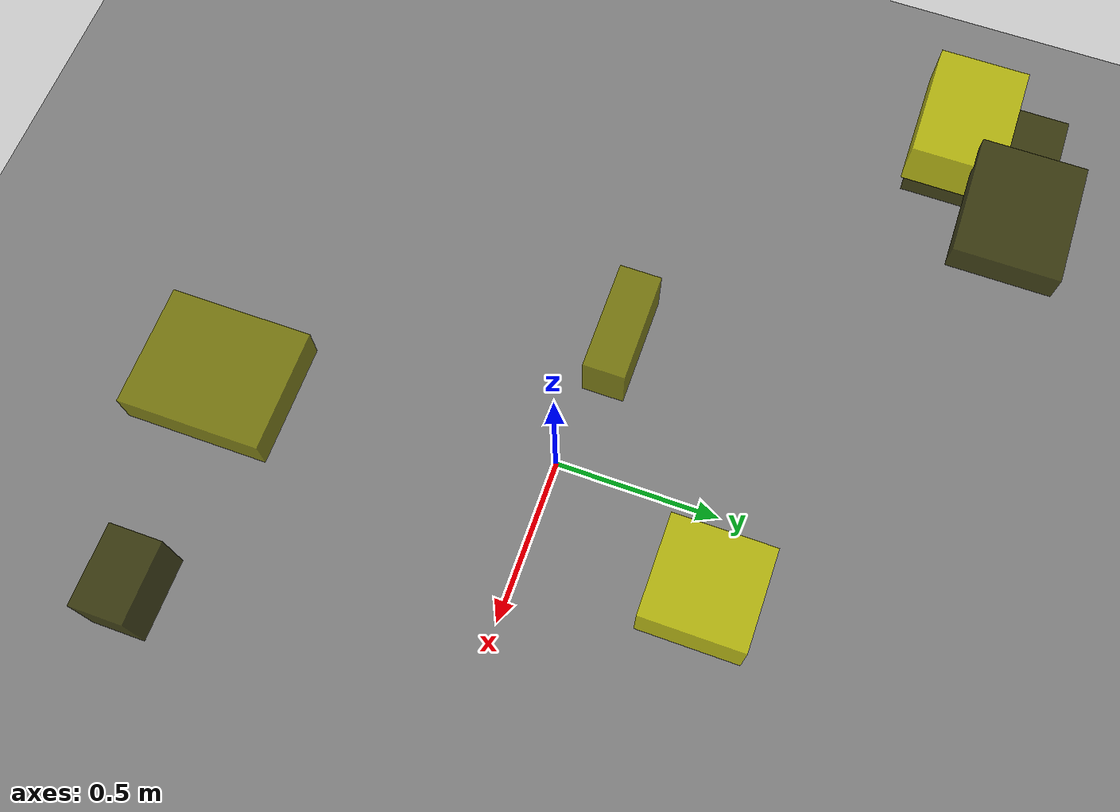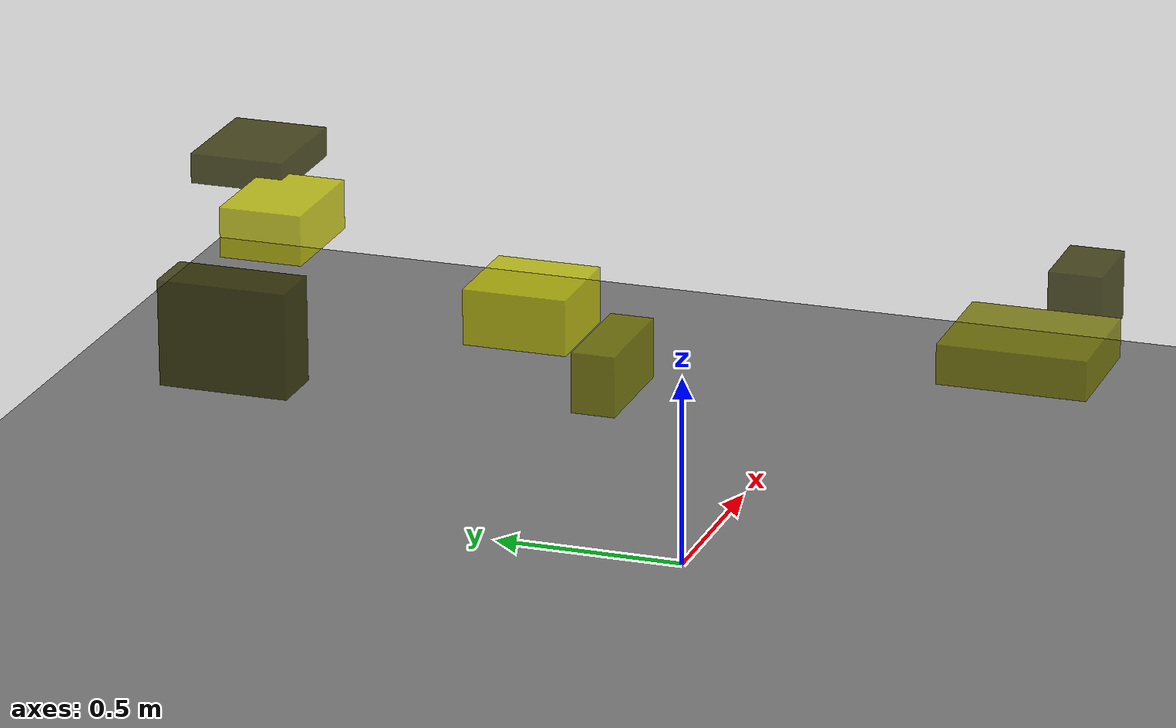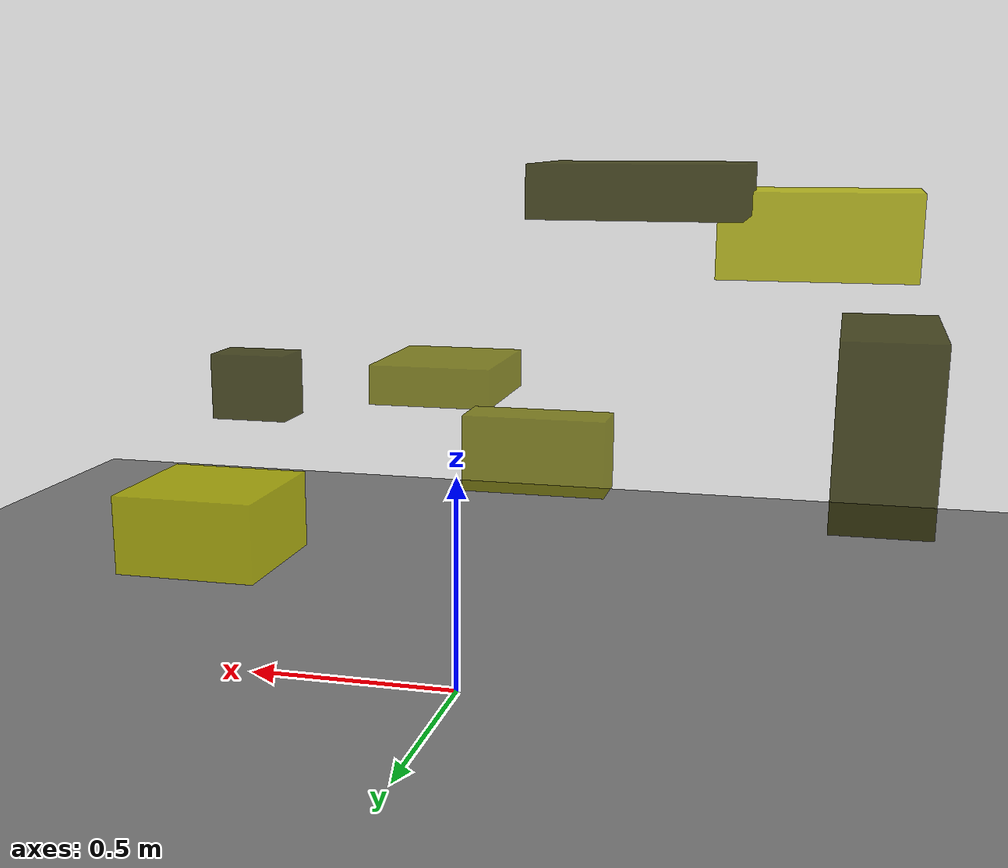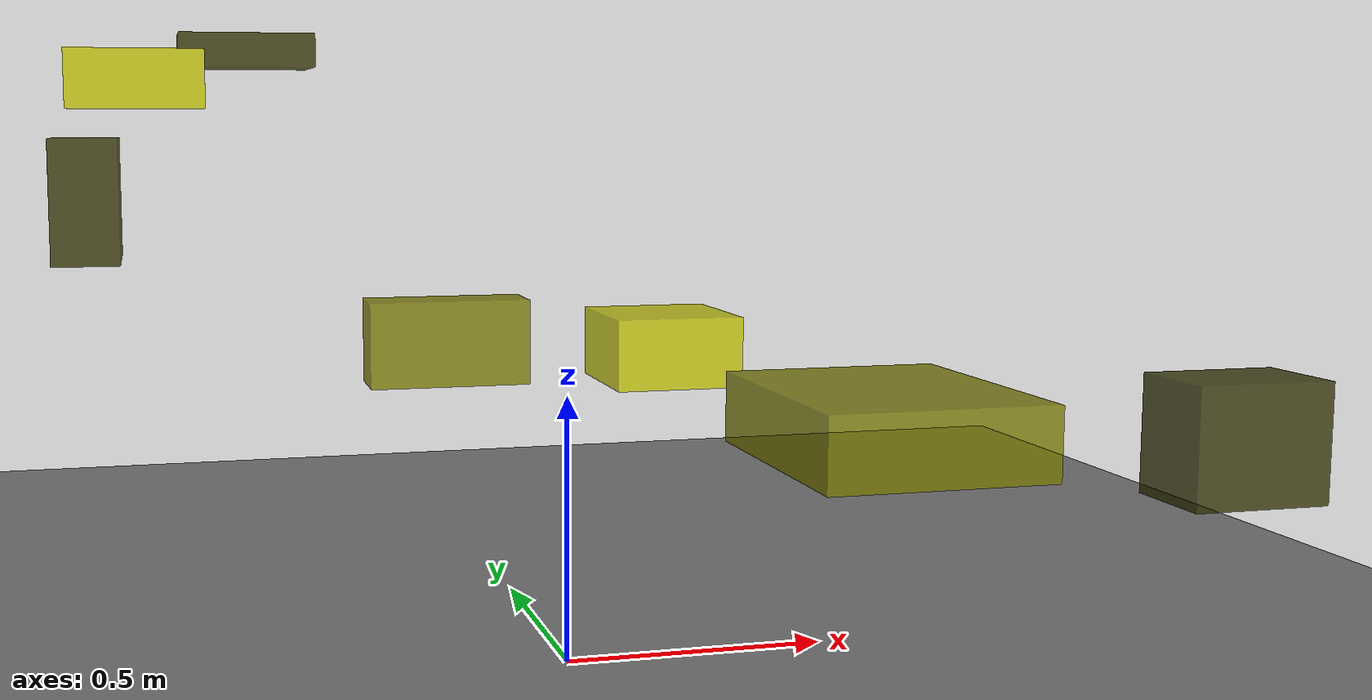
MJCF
<?xml version="1.0"?>
<mujoco model="obstacle_scene">
  <compiler angle="radian" coordinate="local"/>
  <option timestep="0.001" gravity="0 0 -9.81"/>

  <asset>
    <material name="obstacle_mat" rgba="0.8 0.8 0.0 0.8"/>
    <material name="ground_mat" rgba="0.5 0.5 0.5 1"/>
  </asset>

  <worldbody>
    <!-- Ground plane -->
    <geom name="ground" type="plane" size="3 3 0.1" material="ground_mat"/>

    <!-- Obstacles -->
    <body name="obstacle_0" pos="-0.867682 0.843841 0.832026">
      <geom name="obs_0" type="box" size="0.070662 0.162951 0.133170" rgba="0.2 0.2 0.0 0.8"/>
    </body>
    <body name="obstacle_1" pos="-0.204896 0.113873 0.595173">
      <geom name="obs_1" type="box" size="0.147809 0.056064 0.078309" rgba="0.5 0.5 0.0 0.8"/>
    </body>
    <body name="obstacle_2" pos="0.342509 0.520904 0.514266">
      <geom name="obs_2" type="box" size="0.136240 0.138606 0.074637" rgba="0.8 0.8 0.0 0.8"/>
    </body>
    <body name="obstacle_3" pos="-0.518088 0.909996 1.155736">
      <geom name="obs_3" type="box" size="0.146075 0.117884 0.036704" rgba="0.2 0.2 0.0 0.8"/>
    </body>
    <body name="obstacle_4" pos="0.244842 -0.822429 0.584890">
      <geom name="obs_4" type="box" size="0.163486 0.191914 0.052028" rgba="0.5 0.5 0.0 0.8"/>
    </body>
    <body name="obstacle_5" pos="-0.757721 0.755116 1.089673">
      <geom name="obs_5" type="box" size="0.141927 0.103257 0.061893" rgba="0.8 0.8 0.0 0.8"/>
    </body>
    <body name="obstacle_6" pos="0.805038 -0.819168 0.539297">
      <geom name="obs_6" type="box" size="0.108198 0.071553 0.091299" rgba="0.2 0.2 0.0 0.8"/>
    </body>
  </worldbody>
</mujoco>
